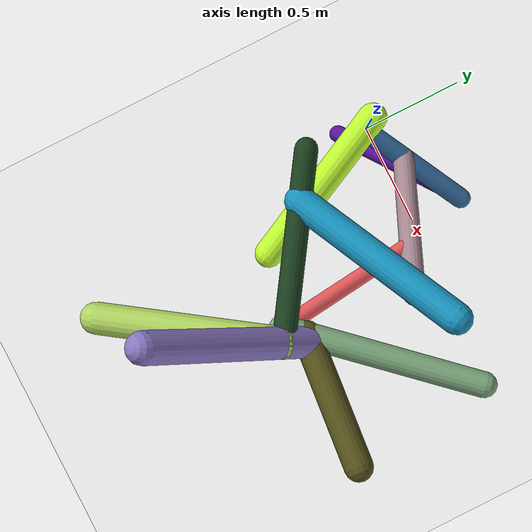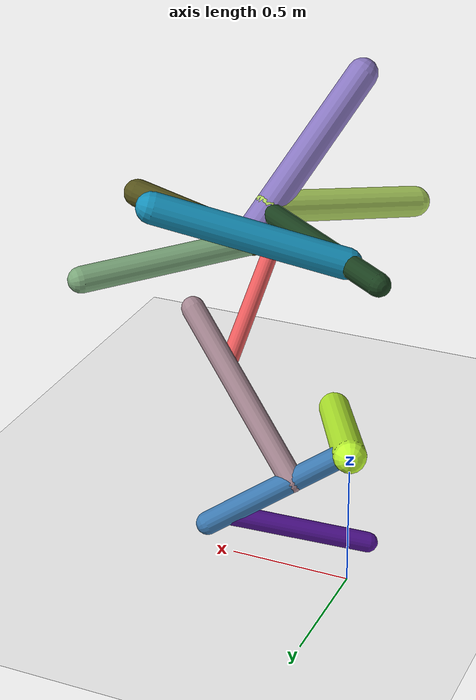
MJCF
<mujoco model="morphology">
  <option timestep="0.01"/>
  <default>
    <default class="/"/>
    <default class="0/"/>
    <default class="0/1/"/>
    <default class="0/1/2/"/>
    <default class="0/1/3/"/>
    <default class="0/1/3/4/"/>
    <default class="0/1/3/4/5/"/>
    <default class="0/1/3/4/5/6/"/>
    <default class="0/1/3/4/5/6/7/"/>
    <default class="0/1/3/4/5/6/7/8/"/>
    <default class="0/1/3/4/5/6/7/9/"/>
    <default class="0/1/3/4/5/6/7/9/10/"/>
  </default>
  <asset>
    <texture name="texplane" type="2d" builtin="checker" rgb1="0.10000000000000001 0.20000000000000001 0.29999999999999999" rgb2="0.20000000000000001 0.29999999999999999 0.40000000000000002" width="300" height="300"/>
    <material name="MatPlane" class="/" texture="texplane" texrepeat="20 20" specular="1" shininess="1" reflectance="0.5"/>
  </asset>
  <worldbody>
    <light name="//unnamed_light_0" class="/" directional="true" pos="0 0 1.5" dir="0 0 -1.3" cutoff="100" exponent="1" diffuse="1 1 1" specular="0.10000000000000001 0.10000000000000001 0.10000000000000001"/>
    <geom name="ground" class="/" type="plane" size="15 15 0.5" material="MatPlane" rgba="1 1 1 1"/>
    <site name="body" class="/" size="9.9999999999999995e-07 9.9999999999999995e-07 9.9999999999999995e-07" pos="0 0 0.57007635235786436"/>
    <body pos="0 0 0.57007635235786436" name="0/">
      <freejoint name="0/"/>
      <geom name="0/geom" class="0/" type="capsule" contype="1" conaffinity="1" condim="3" size="0.06697009207707369" rgba="0.76078475146634095 0.99601747588677891 0.20074440619969103 1" friction="0.59999999999999998 0.10000000000000001 0.10000000000000001" fromto="0 0 0 0.3339610341391186 -0.69755385474296583 -0.20711681849376085"/>
      <site name="0/end0" class="0/" size="0.0050000000000000001" pos="0.3339610341391186 -0.69755385474296583 -0.20711681849376085"/>
      <site name="0/attach1" class="0/" size="9.9999999999999995e-07 9.9999999999999995e-07 9.9999999999999995e-07" pos="0.028345263311670674 -0.059205552940417752 -0.017579238762434647"/>
      <body pos="0.028345263311670674 -0.059205552940417752 -0.017579238762434647" name="0/1/">
        <joint name="0/1/joint/" class="0/" type="hinge" axis="0 1 0" limited="true" range="-39.327505476138697 39.327505476138697"/>
        <geom name="0/1/geom" class="0/1/" type="capsule" contype="1" conaffinity="1" condim="3" size="0.047221549452998952" rgba="0.23642250366182815 0.48134832549065787 0.70315051994400801 1" friction="0.59999999999999998 0.10000000000000001 0.10000000000000001" fromto="0 0 0 0.48134785926430457 0.28618396444724925 -0.28347909607899774"/>
        <site name="0/1/end1" class="0/1/" size="0.0050000000000000001" pos="0.48134785926430457 0.28618396444724925 -0.28347909607899774"/>
        <site name="0/1/attach2" class="0/1/" size="9.9999999999999995e-07 9.9999999999999995e-07 9.9999999999999995e-07" pos="0.41850795277103986 0.24882268150060136 -0.24647093338014175"/>
        <body pos="0.41850795277103986 0.24882268150060136 -0.24647093338014175" name="0/1/2/">
          <joint name="0/1/2/joint/" class="0/1/" type="hinge" axis="-0.64177576590390883 0.54484345822574265 -0.53969386908419181" limited="true" range="-48.913505948305556 48.913505948305556"/>
          <geom name="0/1/2/geom" class="0/1/2/" type="capsule" contype="1" conaffinity="1" condim="3" size="0.041284615311813155" rgba="0.34627776368109098 0.084968260240632865 0.62356078655161373 1" friction="0.59999999999999998 0.10000000000000001 0.10000000000000001" fromto="0 0 0 -0.48094973126359886 -0.33077403035256503 -0.20602617229369991"/>
          <site name="0/1/2/end2" class="0/1/2/" size="0.0050000000000000001" pos="-0.48094973126359886 -0.33077403035256503 -0.20602617229369991"/>
        </body>
        <site name="0/1/attach3" class="0/1/" size="9.9999999999999995e-07 9.9999999999999995e-07 9.9999999999999995e-07" pos="0.19280127916108361 0.1146294376485897 -0.11354601726700056"/>
        <body pos="0.19280127916108361 0.1146294376485897 -0.11354601726700056" name="0/1/3/">
          <joint name="0/1/3/joint/" class="0/1/" type="hinge" axis="0 0.70374137094948008 0.71045624975373844" limited="true" range="-51.57127377233725 51.57127377233725"/>
          <geom name="0/1/3/geom" class="0/1/3/" type="capsule" contype="1" conaffinity="1" condim="3" size="0.048910487996103952" rgba="0.65793703818523763 0.53574801285398854 0.57900640584702456 1" friction="0.59999999999999998 0.10000000000000001 0.10000000000000001" fromto="0 0 0 0.55298082753487243 -0.27485915274894379 0.52908806191555002"/>
          <site name="0/1/3/end3" class="0/1/3/" size="0.0050000000000000001" pos="0.55298082753487243 -0.27485915274894379 0.52908806191555002"/>
          <site name="0/1/3/attach4" class="0/1/3/" size="9.9999999999999995e-07 9.9999999999999995e-07 9.9999999999999995e-07" pos="0.3603461230359794 -0.17911006158308437 0.34477656794324479"/>
          <body pos="0.3603461230359794 -0.17911006158308437 0.34477656794324479" name="0/1/3/4/">
            <joint name="0/1/3/4/joint/" class="0/1/3/" type="hinge" axis="0.73319482066065655 0.31348905272842931 -0.60344839777384396" limited="true" range="-63.700080435528463 63.700080435528463"/>
            <geom name="0/1/3/4/geom" class="0/1/3/4/" type="capsule" contype="1" conaffinity="1" condim="3" size="0.035718211333792001" rgba="0.94747800595990705 0.36865414857843148 0.37222808636382954 1" friction="0.59999999999999998 0.10000000000000001 0.10000000000000001" fromto="0 0 0 0.065705669149541901 -0.67942045132454665 0.31124297543682267"/>
            <site name="0/1/3/4/end4" class="0/1/3/4/" size="0.0050000000000000001" pos="0.065705669149541901 -0.67942045132454665 0.31124297543682267"/>
            <site name="0/1/3/4/attach5" class="0/1/3/4/" size="9.9999999999999995e-07 9.9999999999999995e-07 9.9999999999999995e-07" pos="0.06358083299187782 -0.65744887474802371 0.30117778111512805"/>
            <body pos="0.06358083299187782 -0.65744887474802371 0.30117778111512805" name="0/1/3/4/5/">
              <geom name="0/1/3/4/5/geom" class="0/1/3/4/5/" type="capsule" contype="1" conaffinity="1" condim="3" size="0.056115672872736194" rgba="0.48996932755607803 0.66233446836156218 0.48850390874111471 1" friction="0.59999999999999998 0.10000000000000001 0.10000000000000001" fromto="0 0 0 0.59516401037189159 0.64601789064618242 -0.040215258601576931"/>
              <site name="0/1/3/4/5/end5" class="0/1/3/4/5/" size="0.0050000000000000001" pos="0.59516401037189159 0.64601789064618242 -0.040215258601576931"/>
              <site name="0/1/3/4/5/attach6" class="0/1/3/4/5/" size="9.9999999999999995e-07 9.9999999999999995e-07 9.9999999999999995e-07" pos="0.071262806567506248 0.077351868019541026 -0.0048152310032921423"/>
              <body pos="0.071262806567506248 0.077351868019541026 -0.0048152310032921423" name="0/1/3/4/5/6/">
                <joint name="0/1/3/4/5/6/joint/" class="0/1/3/4/5/" type="hinge" axis="3.4694469519536142e-18 0.062130730592412725 0.99806801988444305" limited="true" range="-57.912940221847975 57.912940221847975"/>
                <geom name="0/1/3/4/5/6/geom" class="0/1/3/4/5/6/" type="capsule" contype="1" conaffinity="1" condim="3" size="0.06169216376222203" rgba="0.3416857755217152 0.3294326063155445 0.10919688738661715 1" friction="0.59999999999999998 0.10000000000000001 0.10000000000000001" fromto="0 0 0 0.57449987427601168 -0.052505083595018931 0.10786515844545752"/>
                <site name="0/1/3/4/5/6/end6" class="0/1/3/4/5/6/" size="0.0050000000000000001" pos="0.57449987427601168 -0.052505083595018931 0.10786515844545752"/>
                <site name="0/1/3/4/5/6/attach7" class="0/1/3/4/5/6/" size="9.9999999999999995e-07 9.9999999999999995e-07 9.9999999999999995e-07" pos="0.031385694651630901 -0.0028684227711073458 0.0058928175237379244"/>
                <body pos="0.031385694651630901 -0.0028684227711073458 0.0058928175237379244" name="0/1/3/4/5/6/7/">
                  <joint name="0/1/3/4/5/6/7/joint/" class="0/1/3/4/5/6/" type="hinge" axis="0.20440794692574155 0.42842784458169031 -0.88015167625852453" limited="true" range="-62.717871251111433 62.717871251111433"/>
                  <geom name="0/1/3/4/5/6/7/geom" class="0/1/3/4/5/6/7/" type="capsule" contype="1" conaffinity="1" condim="3" size="0.067789815043928642" rgba="0.54362840862630635 0.47417433817884713 0.76476062526768118 1" friction="0.59999999999999998 0.10000000000000001 0.10000000000000001" fromto="0 0 0 -0.29575392556547775 -0.56022100019594145 0.60135520654222141"/>
                  <site name="0/1/3/4/5/6/7/end7" class="0/1/3/4/5/6/7/" size="0.0050000000000000001" pos="-0.29575392556547775 -0.56022100019594145 0.60135520654222141"/>
                  <site name="0/1/3/4/5/6/7/attach8" class="0/1/3/4/5/6/7/" size="9.9999999999999995e-07 9.9999999999999995e-07 9.9999999999999995e-07" pos="-0.056386388288063402 -0.10680784298561088 0.11465020493069068"/>
                  <body pos="-0.056386388288063402 -0.10680784298561088 0.11465020493069068" name="0/1/3/4/5/6/7/8/">
                    <joint name="0/1/3/4/5/6/7/8/joint/" class="0/1/3/4/5/6/7/" type="hinge" axis="0.94093135092971236 -0.2308012418342571 0.24774781453193812" limited="true" range="-46.210651261908893 46.210651261908893"/>
                    <geom name="0/1/3/4/5/6/7/8/geom" class="0/1/3/4/5/6/7/8/" type="capsule" contype="1" conaffinity="1" condim="3" size="0.069136571067873007" rgba="0.70031789709785308 0.84292149437577091 0.38213319261415224 1" friction="0.59999999999999998 0.10000000000000001 0.10000000000000001" fromto="0 0 0 -0.4332859734612739 -0.64260301585769386 -0.14597708466262327"/>
                    <site name="0/1/3/4/5/6/7/8/end8" class="0/1/3/4/5/6/7/8/" size="0.0050000000000000001" pos="-0.4332859734612739 -0.64260301585769386 -0.14597708466262327"/>
                  </body>
                  <site name="0/1/3/4/5/6/7/attach9" class="0/1/3/4/5/6/7/" size="9.9999999999999995e-07 9.9999999999999995e-07 9.9999999999999995e-07" pos="-0.049537848162991331 -0.093835247638265298 0.10072509724682455"/>
                  <body pos="-0.049537848162991331 -0.093835247638265298 0.10072509724682455" name="0/1/3/4/5/6/7/9/">
                    <joint name="0/1/3/4/5/6/7/9/joint/" class="0/1/3/4/5/6/7/" type="hinge" axis="-5.5511151231257827e-17 0.73168849347359033 0.68163916298753546" limited="true" range="-50.135758152797166 50.135758152797166"/>
                    <geom name="0/1/3/4/5/6/7/9/geom" class="0/1/3/4/5/6/7/9/" type="capsule" contype="1" conaffinity="1" condim="3" size="0.049616637048280857" rgba="0.10605601185329805 0.25413321739909323 0.12162274290251507 1" friction="0.59999999999999998 0.10000000000000001 0.10000000000000001" fromto="0 0 0 -0.66804326504752054 0.44225418598551958 -0.035859221708023581"/>
                    <site name="0/1/3/4/5/6/7/9/end9" class="0/1/3/4/5/6/7/9/" size="0.0050000000000000001" pos="-0.66804326504752054 0.44225418598551958 -0.035859221708023581"/>
                    <site name="0/1/3/4/5/6/7/9/attach10" class="0/1/3/4/5/6/7/9/" size="9.9999999999999995e-07 9.9999999999999995e-07 9.9999999999999995e-07" pos="-0.48660907044374718 0.32214215695589926 -0.02612019827927814"/>
                    <body pos="-0.48660907044374718 0.32214215695589926 -0.02612019827927814" name="0/1/3/4/5/6/7/9/10/">
                      <joint name="0/1/3/4/5/6/7/9/10/joint/" class="0/1/3/4/5/6/7/9/" type="hinge" axis="-0.55326931270792978 -0.83027761355639984 0.067321259961352881" limited="true" range="-49.424544511056709 49.424544511056709"/>
                      <geom name="0/1/3/4/5/6/7/9/10/geom" class="0/1/3/4/5/6/7/9/10/" type="capsule" contype="1" conaffinity="1" condim="3" size="0.066015073147297362" rgba="0.089820951727477283 0.57945290292916141 0.7447240762317664 1" friction="0.59999999999999998 0.10000000000000001 0.10000000000000001" fromto="0 0 0 0.69824718430970023 0.33536613946425242 0.25358946435988639"/>
                      <site name="0/1/3/4/5/6/7/9/10/end10" class="0/1/3/4/5/6/7/9/10/" size="0.0050000000000000001" pos="0.69824718430970023 0.33536613946425242 0.25358946435988639"/>
                    </body>
                  </body>
                </body>
              </body>
            </body>
          </body>
        </body>
      </body>
      <camera name="0/iso" class="0/" mode="trackcom" pos="-2.2999999999999998 -2.2999999999999998 1" xyaxes="0.45000000000000001 -0.45000000000000001 0 0.29999999999999999 0.14999999999999999 0.93999999999999995"/>
    </body>
  </worldbody>
  <actuator>
    <motor name="0/1/motor" class="0/1/" ctrllimited="true" ctrlrange="-1 1" gear="76" joint="0/1/joint/"/>
    <motor name="0/1/2/motor" class="0/1/2/" ctrllimited="true" ctrlrange="-1 1" gear="90" joint="0/1/2/joint/"/>
    <motor name="0/1/3/motor" class="0/1/3/" ctrllimited="true" ctrlrange="-1 1" gear="94" joint="0/1/3/joint/"/>
    <motor name="0/1/3/4/motor" class="0/1/3/4/" ctrllimited="true" ctrlrange="-1 1" gear="59" joint="0/1/3/4/joint/"/>
    <motor name="0/1/3/4/5/6/motor" class="0/1/3/4/5/6/" ctrllimited="true" ctrlrange="-1 1" gear="60" joint="0/1/3/4/5/6/joint/"/>
    <motor name="0/1/3/4/5/6/7/motor" class="0/1/3/4/5/6/7/" ctrllimited="true" ctrlrange="-1 1" gear="99" joint="0/1/3/4/5/6/7/joint/"/>
    <motor name="0/1/3/4/5/6/7/8/motor" class="0/1/3/4/5/6/7/8/" ctrllimited="true" ctrlrange="-1 1" gear="73" joint="0/1/3/4/5/6/7/8/joint/"/>
    <motor name="0/1/3/4/5/6/7/9/motor" class="0/1/3/4/5/6/7/9/" ctrllimited="true" ctrlrange="-1 1" gear="87" joint="0/1/3/4/5/6/7/9/joint/"/>
    <motor name="0/1/3/4/5/6/7/9/10/motor" class="0/1/3/4/5/6/7/9/10/" ctrllimited="true" ctrlrange="-1 1" gear="59" joint="0/1/3/4/5/6/7/9/10/joint/"/>
  </actuator>
  <sensor>
    <subtreelinvel name="velocity" body="0/"/>
  </sensor>
</mujoco>
